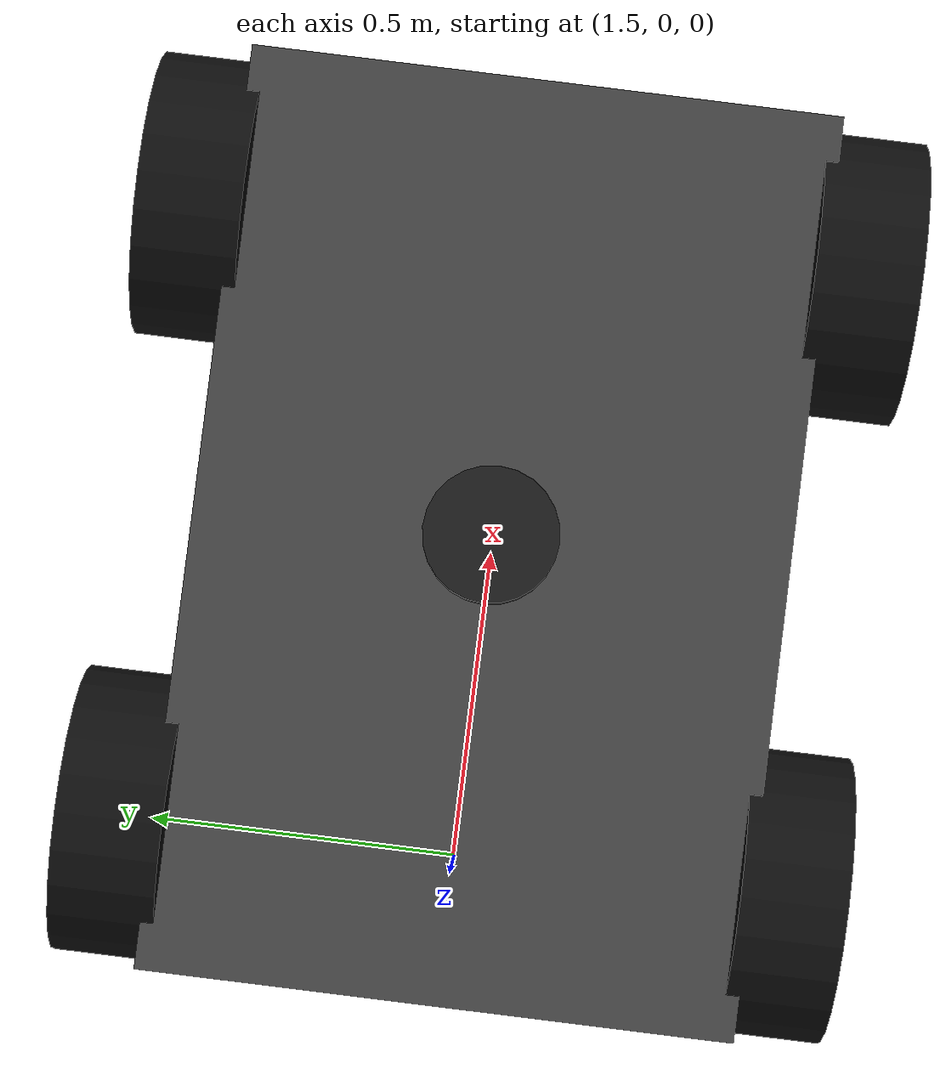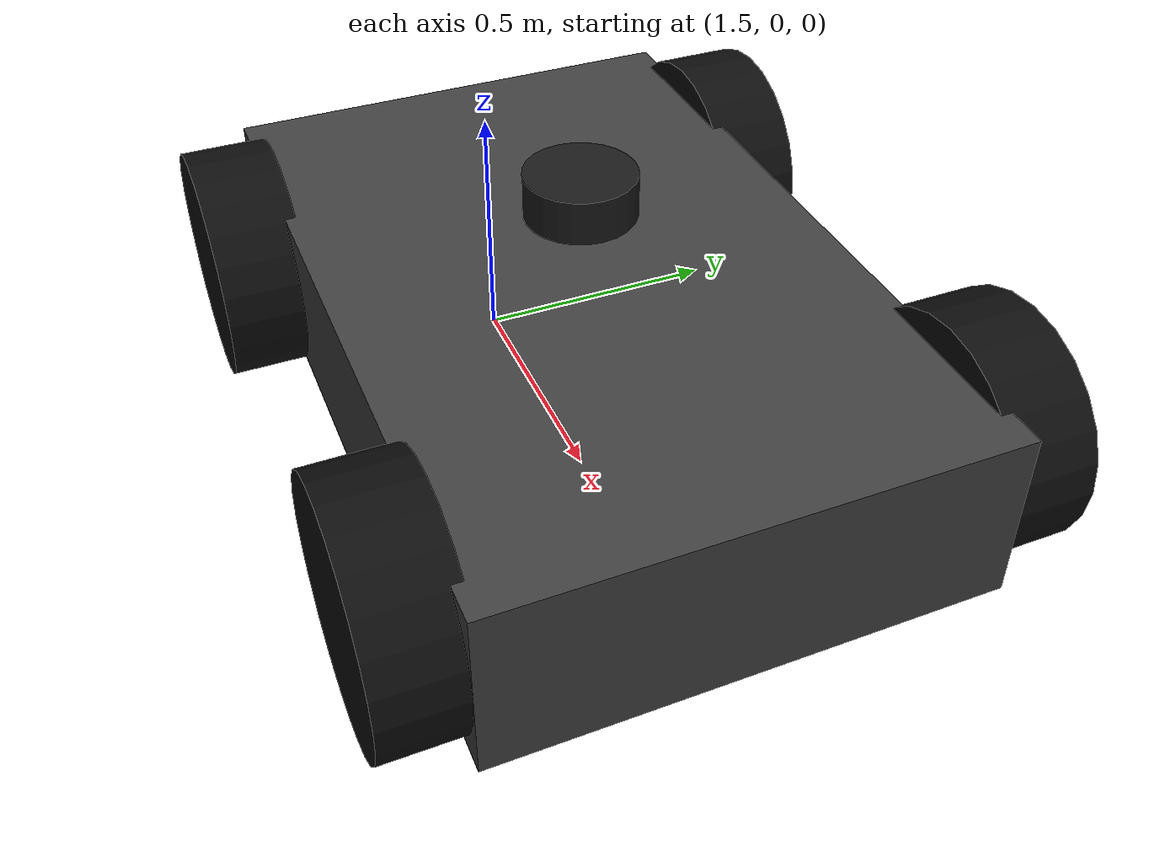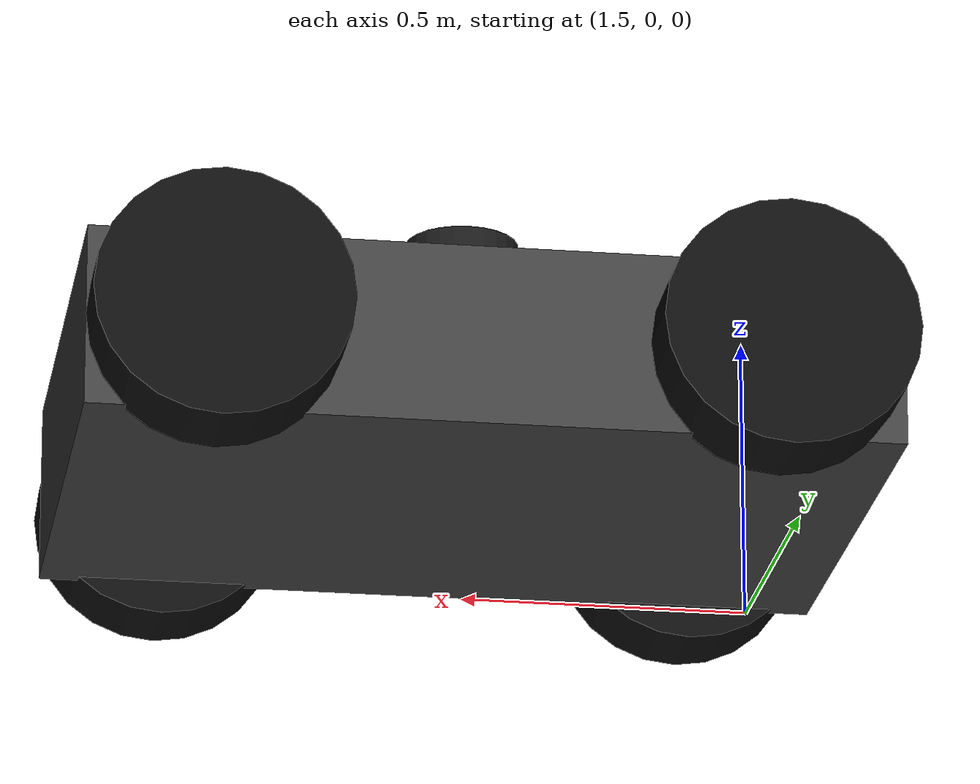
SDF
<?xml version="1.0"?>
<sdf version="1.9">

  <model name="ellios_rover">

    <!-- Rover starts inside the mine -->
    <pose>2.0 0.0 0.32 0 0 0</pose>

    <!-- =========================================================
         MAIN CHASSIS
         ========================================================= -->

    <link name="base_link">

      <pose>0 0 0 0 0 0</pose>

      <inertial>
        <mass>30.0</mass>

        <inertia>
          <!-- 30 kg rectangular body:
               length = 1.40 m
               width  = 0.90 m
               height = 0.32 m -->
          <ixx>2.2810</ixx>
          <iyy>5.1565</iyy>
          <izz>6.9250</izz>
          <ixy>0.0</ixy>
          <ixz>0.0</ixz>
          <iyz>0.0</iyz>
        </inertia>
      </inertial>

      <!-- Chassis visual -->
      <visual name="chassis_visual">
        <pose>0 0 0 0 0 0</pose>

        <geometry>
          <box>
            <size>1.40 0.90 0.32</size>
          </box>
        </geometry>

        <material>
          <ambient>0.15 0.15 0.15 1</ambient>
          <diffuse>0.25 0.25 0.25 1</diffuse>
          <specular>0.3 0.3 0.3 1</specular>
        </material>
      </visual>

      <!-- Chassis collision -->
      <collision name="chassis_collision">
        <pose>0 0 0 0 0 0</pose>

        <geometry>
          <box>
            <size>1.40 0.90 0.32</size>
          </box>
        </geometry>
      </collision>

      <visual name="lidar_visual">
        <pose>0 0 0.30 0 0 0</pose>

        <geometry>
          <cylinder>
            <radius>0.10</radius>
            <length>0.08</length>
          </cylinder>
        </geometry>

        <material>
          <ambient>0.05 0.05 0.05 1</ambient>
          <diffuse>0.10 0.10 0.10 1</diffuse>
          <specular>0.30 0.30 0.30 1</specular>
        </material>
      </visual>

      <!-- =====================================================
           GPU 2D LIDAR SENSOR
           ===================================================== -->

      <sensor name="lidar_2d" type="gpu_lidar">

        <pose>0 0 0.30 0 0 0</pose>

        <always_on>true</always_on>

        <update_rate>10</update_rate>

        <visualize>true</visualize>

        <topic>/rover/scan</topic>

        <lidar>

          <scan>

            <horizontal>

              <samples>720</samples>

              <resolution>1</resolution>

              <min_angle>-3.14159265</min_angle>

              <max_angle>3.14159265</max_angle>

            </horizontal>

          </scan>

          <range>

            <min>0.12</min>

            <max>20.0</max>

            <resolution>0.01</resolution>

          </range>

        </lidar>

      </sensor>
    </link>

    <link name="front_left_wheel">

      <pose>0.48 0.51 0 1.57079632679 0 0</pose>

      <inertial>
        <mass>2.5</mass>

        <inertia>
          <ixx>0.06387</ixx>
          <iyy>0.06050</iyy>
          <izz>0.06387</izz>
          <ixy>0.0</ixy>
          <ixz>0.0</ixz>
          <iyz>0.0</iyz>
        </inertia>
      </inertial>

      <visual name="front_left_wheel_visual">

        <!-- Cylinder axis is Z by default -->
        <geometry>
          <cylinder>
            <radius>0.22</radius>
            <length>0.16</length>
          </cylinder>
        </geometry>

        <material>
          <ambient>0.03 0.03 0.03 1</ambient>
          <diffuse>0.05 0.05 0.05 1</diffuse>
          <specular>0.2 0.2 0.2 1</specular>
        </material>

      </visual>

      <collision name="front_left_wheel_collision">

        <geometry>
          <cylinder>
            <radius>0.22</radius>
            <length>0.16</length>
          </cylinder>
        </geometry>

        <surface>
          <friction>
            <ode>
              <mu>1.5</mu>
              <mu2>1.5</mu2>
            </ode>
          </friction>
        </surface>

      </collision>

    </link>

    <!-- =========================================================
         REAR LEFT WHEEL
         ========================================================= -->

    <link name="rear_left_wheel">

      <pose>-0.48 0.51 0 1.57079632679 0 0</pose>

      <inertial>
        <mass>2.5</mass>

        <inertia>
          <ixx>0.06387</ixx>
          <iyy>0.06050</iyy>
          <izz>0.06387</izz>
          <ixy>0.0</ixy>
          <ixz>0.0</ixz>
          <iyz>0.0</iyz>
        </inertia>
      </inertial>

      <visual name="rear_left_wheel_visual">

        <geometry>
          <cylinder>
            <radius>0.22</radius>
            <length>0.16</length>
          </cylinder>
        </geometry>

        <material>
          <ambient>0.03 0.03 0.03 1</ambient>
          <diffuse>0.05 0.05 0.05 1</diffuse>
          <specular>0.2 0.2 0.2 1</specular>
        </material>

      </visual>

      <collision name="rear_left_wheel_collision">

        <geometry>
          <cylinder>
            <radius>0.22</radius>
            <length>0.16</length>
          </cylinder>
        </geometry>

        <surface>
          <friction>
            <ode>
              <mu>1.5</mu>
              <mu2>1.5</mu2>
            </ode>
          </friction>
        </surface>

      </collision>

    </link>

    <!-- =========================================================
         FRONT RIGHT WHEEL
         ========================================================= -->

    <link name="front_right_wheel">

      <pose>0.48 -0.51 0 1.57079632679 0 0</pose>

      <inertial>
        <mass>2.5</mass>

        <inertia>
          <ixx>0.06387</ixx>
          <iyy>0.06050</iyy>
          <izz>0.06387</izz>
          <ixy>0.0</ixy>
          <ixz>0.0</ixz>
          <iyz>0.0</iyz>
        </inertia>
      </inertial>

      <visual name="front_right_wheel_visual">

        <geometry>
          <cylinder>
            <radius>0.22</radius>
            <length>0.16</length>
          </cylinder>
        </geometry>

        <material>
          <ambient>0.03 0.03 0.03 1</ambient>
          <diffuse>0.05 0.05 0.05 1</diffuse>
          <specular>0.2 0.2 0.2 1</specular>
        </material>

      </visual>

      <collision name="front_right_wheel_collision">

        <geometry>
          <cylinder>
            <radius>0.22</radius>
            <length>0.16</length>
          </cylinder>
        </geometry>

        <surface>
          <friction>
            <ode>
              <mu>1.5</mu>
              <mu2>1.5</mu2>
            </ode>
          </friction>
        </surface>

      </collision>

    </link>

    <!-- =========================================================
         REAR RIGHT WHEEL
         ========================================================= -->

    <link name="rear_right_wheel">

      <pose>-0.48 -0.51 0 1.57079632679 0 0</pose>

      <inertial>
        <mass>2.5</mass>

        <inertia>
          <ixx>0.06387</ixx>
          <iyy>0.06050</iyy>
          <izz>0.06387</izz>
          <ixy>0.0</ixy>
          <ixz>0.0</ixz>
          <iyz>0.0</iyz>
        </inertia>
      </inertial>

      <visual name="rear_right_wheel_visual">

        <geometry>
          <cylinder>
            <radius>0.22</radius>
            <length>0.16</length>
          </cylinder>
        </geometry>

        <material>
          <ambient>0.03 0.03 0.03 1</ambient>
          <diffuse>0.05 0.05 0.05 1</diffuse>
          <specular>0.2 0.2 0.2 1</specular>
        </material>

      </visual>

      <collision name="rear_right_wheel_collision">

        <geometry>
          <cylinder>
            <radius>0.22</radius>
            <length>0.16</length>
          </cylinder>
        </geometry>

        <surface>
          <friction>
            <ode>
              <mu>1.5</mu>
              <mu2>1.5</mu2>
            </ode>
          </friction>
        </surface>

      </collision>

    </link>

    <!-- =========================================================
         FRONT LEFT WHEEL JOINT
         ========================================================= -->

    <joint name="front_left_wheel_joint"
           type="revolute">

      <parent>base_link</parent>
      <child>front_left_wheel</child>

      <axis>
        <xyz expressed_in="__model__">0 1 0</xyz>

        <dynamics>
          <damping>0.15</damping>
          <friction>0.02</friction>
        </dynamics>

        <limit>
          <lower>-1e16</lower>
          <upper>1e16</upper>
          <effort>-1</effort>
          <velocity>-1</velocity>
        </limit>

      </axis>

    </joint>

    <!-- =========================================================
         REAR LEFT WHEEL JOINT
         ========================================================= -->

    <joint name="rear_left_wheel_joint"
           type="revolute">

      <parent>base_link</parent>
      <child>rear_left_wheel</child>

      <axis>
        <xyz expressed_in="__model__">0 1 0</xyz>

        <dynamics>
          <damping>0.15</damping>
          <friction>0.02</friction>
        </dynamics>

        <limit>
          <lower>-1e16</lower>
          <upper>1e16</upper>
          <effort>-1</effort>
          <velocity>-1</velocity>
        </limit>

      </axis>

    </joint>

    <!-- =========================================================
         FRONT RIGHT WHEEL JOINT
         ========================================================= -->

    <joint name="front_right_wheel_joint"
           type="revolute">

      <parent>base_link</parent>
      <child>front_right_wheel</child>

      <axis>
        <xyz expressed_in="__model__">0 1 0</xyz>

        <dynamics>
          <damping>0.15</damping>
          <friction>0.02</friction>
        </dynamics>

        <limit>
          <lower>-1e16</lower>
          <upper>1e16</upper>
          <effort>-1</effort>
          <velocity>-1</velocity>
        </limit>

      </axis>

    </joint>

    <!-- =========================================================
         REAR RIGHT WHEEL JOINT
         ========================================================= -->

    <joint name="rear_right_wheel_joint"
           type="revolute">

      <parent>base_link</parent>
      <child>rear_right_wheel</child>

      <axis>
        <xyz expressed_in="__model__">0 1 0</xyz>

        <dynamics>
          <damping>0.15</damping>
          <friction>0.02</friction>
        </dynamics>

        <limit>
          <lower>-1e16</lower>
          <upper>1e16</upper>
          <effort>-1</effort>
          <velocity>-1</velocity>
        </limit>

      </axis>

    </joint>

    <!-- =========================================================
         4-WHEEL SKID-STEER DIFFERENTIAL DRIVE
         ========================================================= -->

    <plugin
      filename="libgz-sim-diff-drive-system.so"
      name="gz::sim::systems::DiffDrive">

      <!-- LEFT SIDE -->
      <left_joint>front_left_wheel_joint</left_joint>
      <left_joint>rear_left_wheel_joint</left_joint>

      <!-- RIGHT SIDE -->
      <right_joint>front_right_wheel_joint</right_joint>
      <right_joint>rear_right_wheel_joint</right_joint>

      <!-- Wheel geometry -->
      <wheel_separation>1.02</wheel_separation>
      <wheel_radius>0.22</wheel_radius>

      <!-- ROS/Gazebo command interface -->
      <topic>/rover/cmd_vel</topic>

      <!-- Odometry -->
      <odom_topic>/rover/odom</odom_topic>
      <tf_topic>/tf</tf_topic>

      <frame_id>odom</frame_id>
      <child_frame_id>base_link</child_frame_id>

      <odom_publish_frequency>30</odom_publish_frequency>

      <max_linear_acceleration>1.0</max_linear_acceleration>
      <max_linear_deceleration>1.0</max_linear_deceleration>

      <max_angular_acceleration>1.5</max_angular_acceleration>
      <max_angular_deceleration>1.5</max_angular_deceleration>

    </plugin>

  </model>

</sdf>
